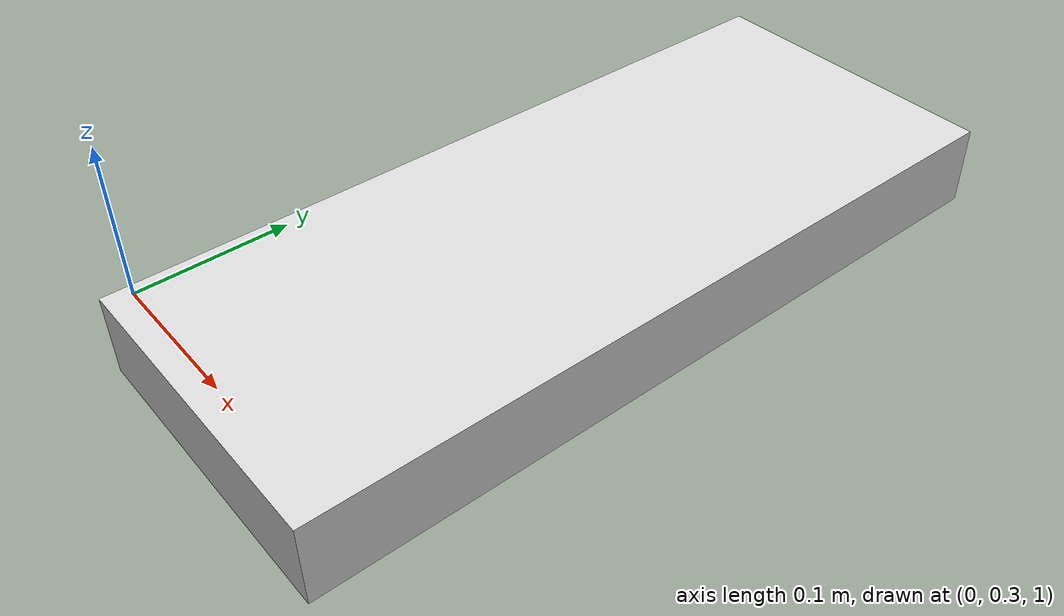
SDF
<?xml version="1.0" ?>
<!-- tmp sdf file generated from LISDF -->
<sdf version="1.9">
  <world name="tmp_world">

<model name="sink_counter_back">
  <static>True</static>
  <pose>0.14900000393390656 0.5019999742507935 1.0240000486373901 0.0 -0.0 0.0</pose>
  <link name="box">

    <inertial>
      <mass>0</mass>
      <pose>0.0 0.0 0.0 0.0 -0.0 0.0</pose>
      <inertia>
        <ixx>0</ixx>
        <ixy>0</ixy>
        <ixz>0</ixz>
        <iyy>0</iyy>
        <iyz>0</iyz>
        <izz>0</izz>
      </inertia>
    </inertial>
    <collision name="box_collision">>
      <pose>0.0 0.0 0.0 0.0 -0.0 0.0</pose>
      <geometry>
        <box>
          <size>0.19200000166893005 0.46799999475479126 0.05000000074505806</size>
        </box>
      </geometry>

    </collision>
    <visual name="box_visual">
      <pose>0.0 0.0 0.0 0.0 -0.0 0.0</pose>
      <geometry>
        <box>
          <size>0.19200000166893005 0.46799999475479126 0.05000000074505806</size>
        </box>
      </geometry>
      <material>
        <ambient>1.0 1.0 1.0 1.0</ambient>
        <diffuse>0.8500000238418579 0.8500000238418579 0.8500000238418579 1.0</diffuse>
        <specular>0.0 0.0 0.0 1.0</specular>
        <emissive>0.0 0.0 0.0 1.0</emissive>
      </material>
      <cast_shadows>True</cast_shadows>
    </visual>
    <self_collide>True</self_collide>
  </link>

</model>

  </world>
</sdf>
